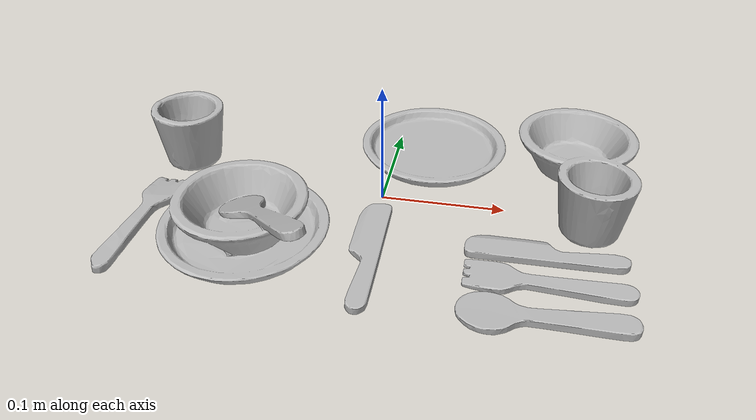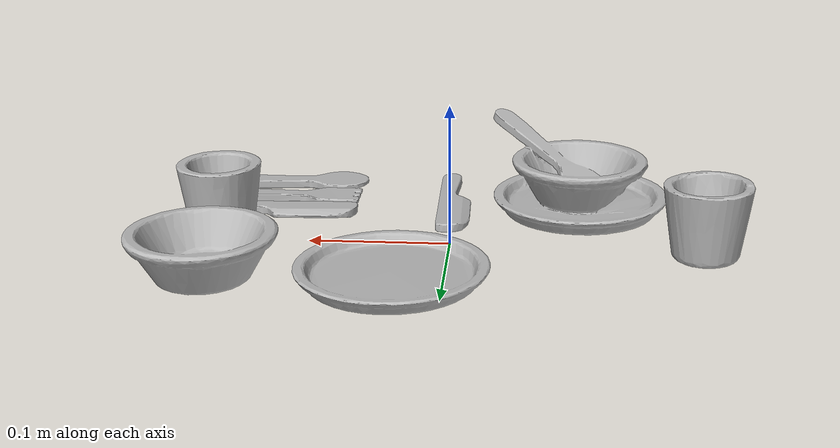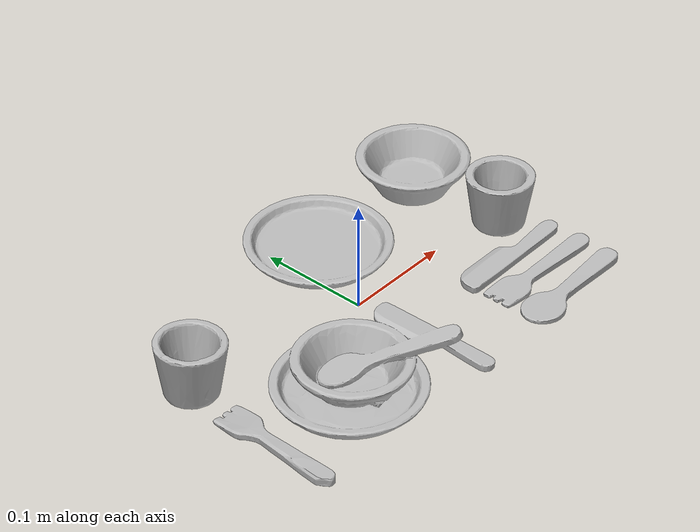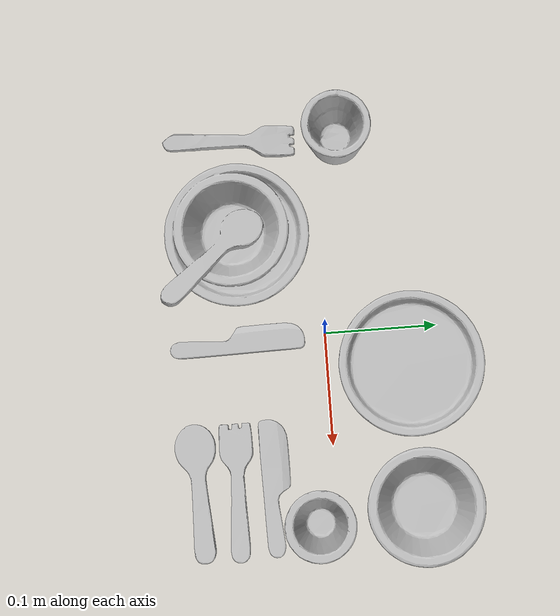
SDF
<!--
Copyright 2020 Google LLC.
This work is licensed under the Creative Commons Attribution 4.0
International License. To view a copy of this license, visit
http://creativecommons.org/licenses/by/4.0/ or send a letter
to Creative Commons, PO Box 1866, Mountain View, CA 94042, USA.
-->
<?xml version="1.0" ?>
<sdf version="1.6">
  <model name="TABLEWARE_SET_5CHkPjjxVpp">
    <link name="link_0">
      <visual name="visual">
        <geometry>
          <mesh>
            <uri>meshes/model.obj</uri>
          </mesh>
        </geometry>
      </visual>
      <collision name="collision_0">
        <geometry>
          <mesh>
            <uri>meshes/model.obj</uri>
          </mesh>
        </geometry>
      </collision>
    </link>
  </model>
</sdf>
